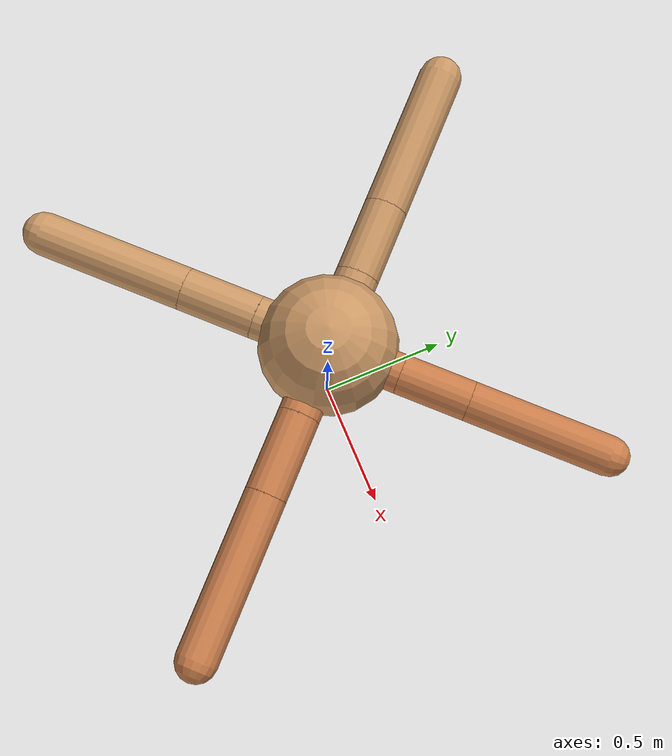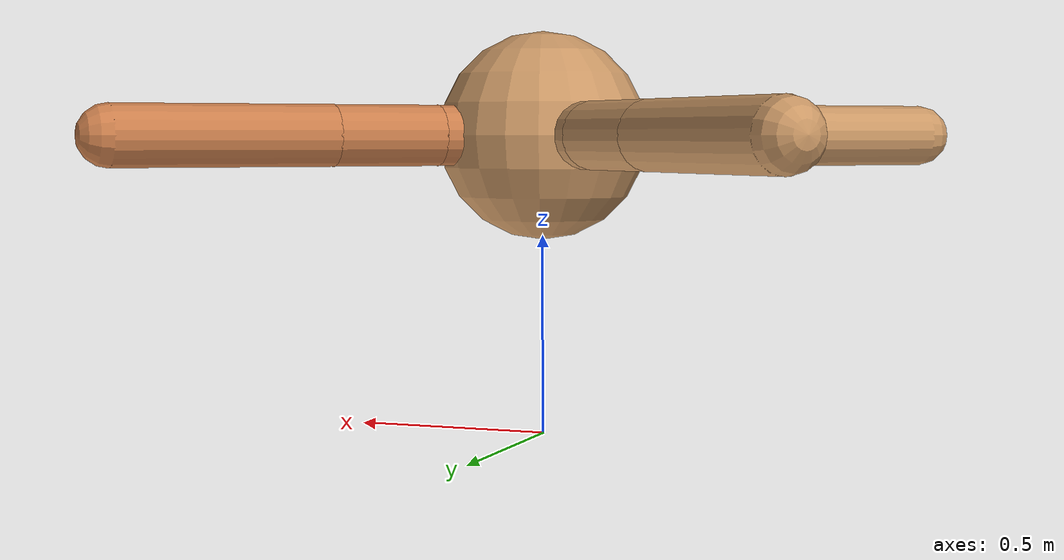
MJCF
<?xml version="1.0" ?>
<mujoco model="ant">

	<compiler angle="degree" coordinate="local" inertiafromgeom="true"/>

	<option integrator="RK4" timestep="0.01"/>

	<custom>

		<numeric data="0.0 0.0 0.55 1.0 0.0 0.0 0.0 0.0 1.0 0.0 -1.0 0.0 -1.0 0.0 1.0" name="init_qpos"/>

	</custom>

	<default>

		<joint armature="1" damping="1" limited="true"/>

		<geom conaffinity="0" condim="3" density="5.0" friction="1.5 0.1 0.1" margin="0.01" rgba="0.8 0.6 0.4 1"/>

	</default>

	<worldbody>

		<body name="torso" pos="0 0 0.75">

			<geom name="torso_geom" pos="0 0 0" size="0.259781693021379" type="sphere"/>

			<!--joint armature="0" damping="0" limited="false" margin="0.01" name="root" pos="0 0 0" type="free"/-->

			<body name="front_left_leg" pos="0 0 0">

				<geom fromto="0 0 0 0.2 0.2 0" name="aux_1_geom" size="0.07484018587760605" type="capsule" rgba=".8 .5 .3 1"/>

				<body name="aux_1" pos="0.2 0.2 0">

					<joint axis="0 0 1" name="hip_1" pos="0.0 0.0 0.0" range="-40 40" type="hinge"/>

					<geom fromto="0 0 0 0.1883650737519063 0.1883650737519063 0" name="left_leg_geom" size="0.07484018587760605" type="capsule" rgba=".8 .5 .3 1"/>

					<body pos="0.1883650737519063 0.1883650737519063 0" name="front_left_foot">

						<joint axis="-1 1 0" name="ankle_1" pos="0.0 0.0 0.0" range="30 100" type="hinge"/>

						<geom fromto="0 0 0 0.3767301475038126 0.3767301475038126 0" name="left_ankle_geom" size="0.07484018587760605" type="capsule" rgba=".8 .5 .3 1"/>

					</body>

				</body>

			</body>

			<body name="front_right_leg" pos="0 0 0">

				<geom fromto="0 0 0 -0.2 0.2 0" name="aux_2_geom" size="0.08222719740834437" type="capsule"/>

				<body name="aux_2" pos="-0.2 0.2 0">

					<joint axis="0 0 1" name="hip_2" pos="0.0 0.0 0.0" range="-40 40" type="hinge"/>

					<geom fromto="0 0 0 -0.20114703479661458 0.20114703479661458 0" name="right_leg_geom" size="0.08222719740834437" type="capsule"/>

					<body pos="-0.20114703479661458 0.20114703479661458 0" name="front_right_foot">

						<joint axis="1 1 0" name="ankle_2" pos="0.0 0.0 0.0" range="-100 -30" type="hinge"/>

						<geom fromto="0 0 0 -0.40229406959322916 0.40229406959322916 0" name="right_ankle_geom" size="0.08222719740834437" type="capsule"/>

					</body>

				</body>

			</body>

			<body name="left_back_leg" pos="0 0 0">

				<geom fromto="0 0 0 -0.2 -0.2 0" name="aux_3_geom" size="0.08144276979550155" type="capsule"/>

				<body name="aux_3" pos="-0.2 -0.2 0">

					<joint axis="0 0 1" name="hip_3" pos="0.0 0.0 0.0" range="-40 40" type="hinge"/>

					<geom fromto="0 0 0 -0.201151935995012 -0.201151935995012 0" name="back_leg_geom" size="0.08144276979550155" type="capsule"/>

					<body pos="-0.201151935995012 -0.201151935995012 0" name="left_back_foot">

						<joint axis="-1 1 0" name="ankle_3" pos="0.0 0.0 0.0" range="-100 -30" type="hinge"/>

						<geom fromto="0 0 0 -0.402303871990024 -0.402303871990024 0" name="third_ankle_geom" size="0.08144276979550155" type="capsule"/>

					</body>

				</body>

			</body>

			<body name="right_back_leg" pos="0 0 0">

				<geom fromto="0 0 0 0.2 -0.2 0" name="aux_4_geom" size="0.07840050049367399" type="capsule" rgba=".8 .5 .3 1"/>

				<body name="aux_4" pos="0.2 -0.2 0">

					<joint axis="0 0 1" name="hip_4" pos="0.0 0.0 0.0" range="-40 40" type="hinge"/>

					<geom fromto="0 0 0 0.21950886878957476 -0.21950886878957476 0" name="rightback_leg_geom" size="0.07840050049367399" type="capsule" rgba=".8 .5 .3 1"/>

					<body pos="0.21950886878957476 -0.21950886878957476 0" name="right_back_foot">

						<joint axis="1 1 0" name="ankle_4" pos="0.0 0.0 0.0" range="30 100" type="hinge"/>

						<geom fromto="0 0 0 0.4390177375791495 -0.4390177375791495 0" name="fourth_ankle_geom" size="0.07840050049367399" type="capsule" rgba=".8 .5 .3 1"/>

					</body>

				</body>

			</body>

		</body>

	</worldbody>

	<actuator>

		<motor ctrllimited="true" ctrlrange="-1.0 1.0" joint="hip_4" gear="150"/>

		<motor ctrllimited="true" ctrlrange="-1.0 1.0" joint="ankle_4" gear="150"/>

		<motor ctrllimited="true" ctrlrange="-1.0 1.0" joint="hip_1" gear="150"/>

		<motor ctrllimited="true" ctrlrange="-1.0 1.0" joint="ankle_1" gear="150"/>

		<motor ctrllimited="true" ctrlrange="-1.0 1.0" joint="hip_2" gear="150"/>

		<motor ctrllimited="true" ctrlrange="-1.0 1.0" joint="ankle_2" gear="150"/>

		<motor ctrllimited="true" ctrlrange="-1.0 1.0" joint="hip_3" gear="150"/>

		<motor ctrllimited="true" ctrlrange="-1.0 1.0" joint="ankle_3" gear="150"/>

	</actuator>

</mujoco>
